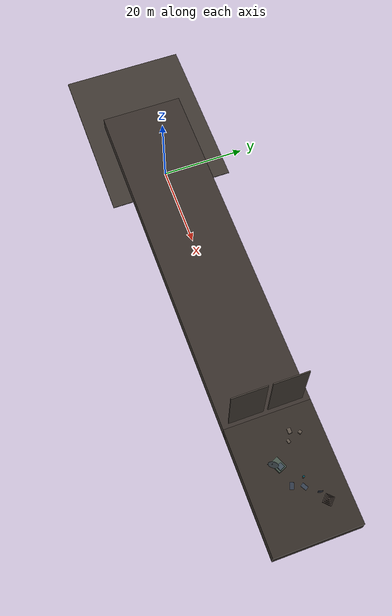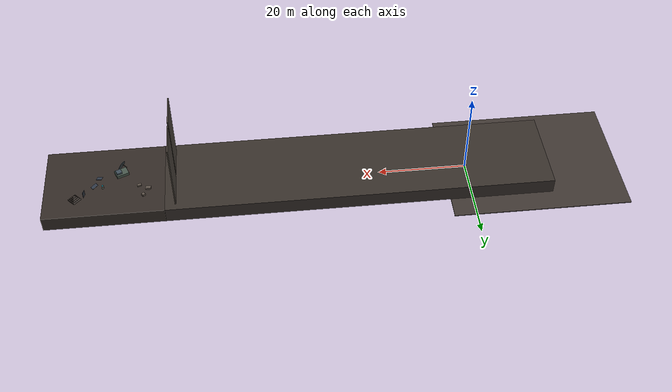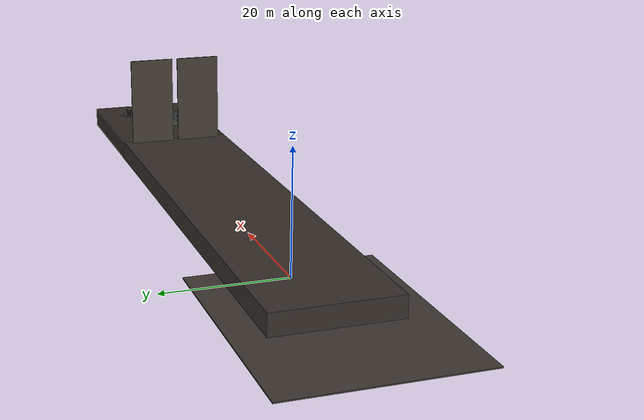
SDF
<sdf version="1.8">
 <world name="lava_tube_fuel">
  <plugin name="gz::sim::systems::Physics" filename="gz-sim-physics-system"/>
  <plugin name="gz::sim::systems::UserCommands" filename="gz-sim-user-commands-system"/>
  <plugin name="gz::sim::systems::SceneBroadcaster" filename="gz-sim-scene-broadcaster-system"/>
  <plugin name="gz::sim::systems::Sensors" filename="gz-sim-sensors-system">
   <render_engine>ogre2</render_engine>
  </plugin>
  <gravity>0 0 -1.62</gravity>
  <magnetic_field>0 0 0</magnetic_field>
  <atmosphere type="adiabatic"/>
  <physics type="ode"><max_step_size>0.002</max_step_size><real_time_factor>1</real_time_factor></physics>
  <scene>
   <ambient>0.12 0.11 0.14 1</ambient>
   <background>0.02 0.02 0.05 1</background>
   <shadows>false</shadows>
  </scene>
  <light name="tunnel_lit_00" type="point">
   <pose>2 0 4.3 0 0 0</pose>
   <diffuse>0.82 0.74 0.62 1</diffuse>
   <specular>0.12 0.11 0.10 1</specular>
   <attenuation><range>22</range><linear>0.06</linear><constant>0.4</constant></attenuation>
  </light>
  <light name="tunnel_lit_01" type="point">
   <pose>14 0 4.3 0 0 0</pose>
   <diffuse>0.78 0.70 0.60 1</diffuse>
   <specular>0.12 0.11 0.10 1</specular>
   <attenuation><range>22</range><linear>0.06</linear><constant>0.4</constant></attenuation>
  </light>
  <light name="tunnel_lit_02" type="point">
   <pose>26 0 4.3 0 0 0</pose>
   <diffuse>0.78 0.70 0.60 1</diffuse>
   <specular>0.12 0.11 0.10 1</specular>
   <attenuation><range>22</range><linear>0.06</linear><constant>0.4</constant></attenuation>
  </light>
  <light name="tunnel_lit_03" type="point">
   <pose>38 0 4.3 0 0 0</pose>
   <diffuse>0.78 0.70 0.60 1</diffuse>
   <specular>0.12 0.11 0.10 1</specular>
   <attenuation><range>22</range><linear>0.06</linear><constant>0.4</constant></attenuation>
  </light>
  <light name="tunnel_lit_04" type="point">
   <pose>50 0 4.3 0 0 0</pose>
   <diffuse>0.78 0.70 0.60 1</diffuse>
   <specular>0.12 0.11 0.10 1</specular>
   <attenuation><range>22</range><linear>0.06</linear><constant>0.4</constant></attenuation>
  </light>
  <light name="tunnel_lit_05" type="point">
   <pose>62 0 4.3 0 0 0</pose>
   <diffuse>0.78 0.70 0.60 1</diffuse>
   <specular>0.12 0.11 0.10 1</specular>
   <attenuation><range>22</range><linear>0.06</linear><constant>0.4</constant></attenuation>
  </light>
  <light name="tunnel_lit_06" type="point">
   <pose>74 0 4.3 0 0 0</pose>
   <diffuse>0.78 0.70 0.60 1</diffuse>
   <specular>0.12 0.11 0.10 1</specular>
   <attenuation><range>22</range><linear>0.06</linear><constant>0.4</constant></attenuation>
  </light>
  <light name="tunnel_lit_07" type="point">
   <pose>86 0 4.3 0 0 0</pose>
   <diffuse>0.78 0.70 0.60 1</diffuse>
   <specular>0.12 0.11 0.10 1</specular>
   <attenuation><range>22</range><linear>0.06</linear><constant>0.4</constant></attenuation>
  </light>
  <light name="tunnel_lit_08" type="point">
   <pose>98 0 4.3 0 0 0</pose>
   <diffuse>0.78 0.70 0.60 1</diffuse>
   <specular>0.12 0.11 0.10 1</specular>
   <attenuation><range>22</range><linear>0.06</linear><constant>0.4</constant></attenuation>
  </light>
  <light name="tunnel_lit_09" type="point">
   <pose>68 0 4.3 0 0 0</pose>
   <diffuse>0.78 0.70 0.60 1</diffuse>
   <specular>0.12 0.11 0.10 1</specular>
   <attenuation><range>22</range><linear>0.06</linear><constant>0.4</constant></attenuation>
  </light>
  <light name="chamber_glow" type="point">
   <pose>81 0 5.5 0 0 0</pose>
   <diffuse>0.45 0.55 0.65 1</diffuse>
   <attenuation><range>28</range><linear>0.05</linear><constant>0.5</constant></attenuation>
  </light>
  <light name="beacon_pulse" type="point">
   <pose>82 2 4.8 0 0 0</pose>
   <diffuse>0.10 0.70 0.80 1</diffuse>
   <attenuation><range>12</range></attenuation>
  </light>
  <model name="lunar_surface">
   <static>true</static>
   <pose>-15 0 -0.1 0 0 0</pose>
   <link name="link">
    <collision name="surface_col"><geometry><box><size>40 30 0.2</size></box></geometry></collision>
    <visual name="surface_vis">
     <geometry><box><size>40 30 0.2</size></box></geometry>
     <material><ambient>0.20 0.18 0.16 1</ambient><diffuse>0.25 0.22 0.20 1</diffuse></material>
    </visual>
   </link>
  </model>
  <model name="walking_plate">
   <static>true</static>
   <pose>25 0 1.75 0 0 0</pose>
   <link name="link">
    <collision name="plate_col"><geometry><box><size>86.667 20 3.5</size></box></geometry></collision>
    <visual name="plate_vis">
     <geometry><box><size>86.667 20 3.5</size></box></geometry>
     <material>
      <ambient>0.18 0.16 0.14 1</ambient>
      <diffuse>0.22 0.19 0.17 1</diffuse>
      <specular>0.05 0.05 0.05 1</specular>
     </material>
    </visual>
   </link>
  </model>
  <model name="enigma_door_left">
   <static>true</static>
   <pose>66 -4.5 11.5 0 0 0</pose>
   <link name="link">
    <collision name="jamb_col"><geometry><box><size>0.25 8.0 16.0</size></box></geometry></collision>
    <visual name="jamb_vis">
     <geometry><box><size>0.25 8.0 16.0</size></box></geometry>
     <material>
      <ambient>0.22 0.20 0.18 1</ambient>
      <diffuse>0.28 0.25 0.22 1</diffuse>
      <specular>0.08 0.08 0.08 1</specular>
     </material>
    </visual>
   </link>
  </model>
  <model name="enigma_door_right">
   <static>true</static>
   <pose>66 4.5 11.5 0 0 0</pose>
   <link name="link">
    <collision name="jamb_col"><geometry><box><size>0.25 8.0 16.0</size></box></geometry></collision>
    <visual name="jamb_vis">
     <geometry><box><size>0.25 8.0 16.0</size></box></geometry>
     <material>
      <ambient>0.22 0.20 0.18 1</ambient>
      <diffuse>0.28 0.25 0.22 1</diffuse>
      <specular>0.08 0.08 0.08 1</specular>
     </material>
    </visual>
   </link>
  </model>
  <model name="enigma_plate">
   <static>true</static>
   <pose>81 0 1.75 0 0 0</pose>
   <link name="link">
    <collision name="plate_col"><geometry><box><size>28 20 3.5</size></box></geometry></collision>
    <visual name="plate_vis">
     <geometry><box><size>28 20 3.5</size></box></geometry>
     <material>
      <ambient>0.16 0.14 0.12 1</ambient>
      <diffuse>0.20 0.17 0.15 1</diffuse>
      <specular>0.05 0.05 0.05 1</specular>
     </material>
    </visual>
   </link>
  </model>
  <model name="rubble_0">
   <static>true</static>
   <pose>72 3 3.5 0 0 0</pose>
   <link name="link">
    <collision name="r_col">
     <pose>0 0 0.2 0 0 0</pose>
     <geometry><box><size>1.2 0.8 0.4</size></box></geometry>
    </collision>
    <visual name="r_vis">
     <pose>0 0 0.2 0 0 0</pose>
     <geometry><box><size>1.2 0.8 0.4</size></box></geometry>
     <material><diffuse>0.36 0.32 0.28 1</diffuse></material>
    </visual>
   </link>
  </model>
  <model name="rubble_1">
   <static>true</static>
   <pose>74 2 3.5 0 0 0.3</pose>
   <link name="link">
    <collision name="r_col">
     <pose>0 0 0.175 0 0 0</pose>
     <geometry><box><size>0.9 0.6 0.35</size></box></geometry>
    </collision>
    <visual name="r_vis">
     <pose>0 0 0.175 0 0 0</pose>
     <geometry><box><size>0.9 0.6 0.35</size></box></geometry>
     <material><diffuse>0.36 0.32 0.28 1</diffuse></material>
    </visual>
   </link>
  </model>
  <model name="rubble_2">
   <static>true</static>
   <pose>73 5 3.5 0 0 0.6</pose>
   <link name="link">
    <collision name="r_col">
     <pose>0 0 0.25 0 0 0</pose>
     <geometry><box><size>0.7 0.7 0.5</size></box></geometry>
    </collision>
    <visual name="r_vis">
     <pose>0 0 0.25 0 0 0</pose>
     <geometry><box><size>0.7 0.7 0.5</size></box></geometry>
     <material><diffuse>0.36 0.32 0.28 1</diffuse></material>
    </visual>
   </link>
  </model>
  <model name="ancient_lander">
   <static>true</static>
   <pose>78 -2 3.5 0 0 0.4</pose>
   <link name="link">
    <collision name="body_col">
     <pose>0 0 0.35 0 0 0</pose>
     <geometry><box><size>2.8 2.0 0.7</size></box></geometry>
    </collision>
    <visual name="body_vis">
     <pose>0 0 0.35 0 0 0</pose>
     <geometry><box><size>2.8 2.0 0.7</size></box></geometry>
     <material><diffuse>0.28 0.34 0.30 1</diffuse></material>
    </visual>
    <collision name="dome_col">
     <pose>0.6 0 0.85 0 0 0</pose>
     <geometry><box><size>1.2 1.2 0.5</size></box></geometry>
    </collision>
    <visual name="dome_vis">
     <pose>0.6 0 0.85 0 0 0</pose>
     <geometry><box><size>1.2 1.2 0.5</size></box></geometry>
     <material><diffuse>0.24 0.30 0.34 1</diffuse></material>
    </visual>
   </link>
  </model>
  <model name="ancient_dish">
   <static>true</static>
   <pose>77 -4 3.5 0 0.5 0.8</pose>
   <link name="link">
    <collision name="mast_col">
     <pose>0 0 1.1 0 0 0</pose>
     <geometry><cylinder><radius>0.06</radius><length>2.2</length></cylinder></geometry>
    </collision>
    <visual name="mast_vis">
     <pose>0 0 1.1 0 0 0</pose>
     <geometry><cylinder><radius>0.06</radius><length>2.2</length></cylinder></geometry>
     <material><diffuse>0.26 0.30 0.28 1</diffuse></material>
    </visual>
    <collision name="dish_col">
     <pose>0.3 0 2.0 1.2 0 0</pose>
     <geometry><cylinder><radius>1.1</radius><length>0.06</length></cylinder></geometry>
    </collision>
    <visual name="dish_vis">
     <pose>0.3 0 2.0 1.2 0 0</pose>
     <geometry><cylinder><radius>1.1</radius><length>0.06</length></cylinder></geometry>
     <material><diffuse>0.30 0.34 0.36 1</diffuse></material>
    </visual>
   </link>
  </model>
  <model name="solar_debris_0">
   <static>true</static>
   <pose>84 1.5 3.5 0 0.3 0.6</pose>
   <link name="link">
    <collision name="panel_col">
     <pose>0 0 0.15 0 0 0</pose>
     <geometry><box><size>1.8 0.9 0.04</size></box></geometry>
    </collision>
    <visual name="panel_vis">
     <pose>0 0 0.15 0 0 0</pose>
     <geometry><box><size>1.8 0.9 0.04</size></box></geometry>
     <material><diffuse>0.20 0.24 0.30 1</diffuse></material>
    </visual>
   </link>
  </model>
  <model name="solar_debris_1">
   <static>true</static>
   <pose>83 -1 3.5 0 0.3 -0.4</pose>
   <link name="link">
    <collision name="panel_col">
     <pose>0 0 0.15 0 0 0</pose>
     <geometry><box><size>1.8 0.9 0.04</size></box></geometry>
    </collision>
    <visual name="panel_vis">
     <pose>0 0 0.15 0 0 0</pose>
     <geometry><box><size>1.8 0.9 0.04</size></box></geometry>
     <material><diffuse>0.20 0.24 0.30 1</diffuse></material>
    </visual>
   </link>
  </model>
  <model name="ancient_beacon">
   <static>true</static>
   <pose>82 2 3.5 0 0 0</pose>
   <link name="link">
    <collision name="pedestal_col">
     <pose>0 0 0.3 0 0 0</pose>
     <geometry><cylinder><radius>0.25</radius><length>0.6</length></cylinder></geometry>
    </collision>
    <visual name="pedestal_vis">
     <pose>0 0 0.3 0 0 0</pose>
     <geometry><cylinder><radius>0.25</radius><length>0.6</length></cylinder></geometry>
     <material><diffuse>0.36 0.38 0.34 1</diffuse></material>
    </visual>
    <collision name="orb_col">
     <pose>0 0 0.75 0 0 0</pose>
     <geometry><sphere><radius>0.18</radius></sphere></geometry>
    </collision>
    <visual name="orb_vis">
     <pose>0 0 0.75 0 0 0</pose>
     <geometry><sphere><radius>0.18</radius></sphere></geometry>
     <material><diffuse>0.0 0.5 0.6 1</diffuse><emissive>0.0 0.8 1.0 1</emissive></material>
    </visual>
   </link>
  </model>
  <model name="ancient_plaque">
   <static>true</static>
   <pose>86 4 3.5 0 0 -0.3</pose>
   <link name="link">
    <collision name="slab_col">
     <pose>0 0 0.7 0 0 0</pose>
     <geometry><box><size>0.08 1.0 1.4</size></box></geometry>
    </collision>
    <visual name="slab_vis">
     <pose>0 0 0.7 0 0 0</pose>
     <geometry><box><size>0.08 1.0 1.4</size></box></geometry>
     <material><diffuse>0.18 0.20 0.24 1</diffuse><emissive>0.02 0.08 0.12 1</emissive></material>
    </visual>
   </link>
  </model>
  <model name="mystery_pyramid">
   <static>true</static>
   <pose>88 5 3.5 0 0 0.785</pose>
   <link name="link">
    <collision name="t0_col">
     <pose>0 0 0.15 0 0 0</pose>
     <geometry><box><size>2.0 2.0 0.3</size></box></geometry>
    </collision>
    <visual name="t0_vis">
     <pose>0 0 0.15 0 0 0</pose>
     <geometry><box><size>2.0 2.0 0.3</size></box></geometry>
     <material><diffuse>0.18 0.15 0.13 1</diffuse></material>
    </visual>
    <collision name="t1_col">
     <pose>0 0 0.45 0 0 0</pose>
     <geometry><box><size>1.5 1.5 0.3</size></box></geometry>
    </collision>
    <visual name="t1_vis">
     <pose>0 0 0.45 0 0 0</pose>
     <geometry><box><size>1.5 1.5 0.3</size></box></geometry>
     <material><diffuse>0.18 0.15 0.13 1</diffuse></material>
    </visual>
    <collision name="t2_col">
     <pose>0 0 0.75 0 0 0</pose>
     <geometry><box><size>1.0 1.0 0.3</size></box></geometry>
    </collision>
    <visual name="t2_vis">
     <pose>0 0 0.75 0 0 0</pose>
     <geometry><box><size>1.0 1.0 0.3</size></box></geometry>
     <material><diffuse>0.18 0.15 0.13 1</diffuse></material>
    </visual>
    <collision name="t3_col">
     <pose>0 0 1.05 0 0 0</pose>
     <geometry><box><size>0.5 0.5 0.3</size></box></geometry>
    </collision>
    <visual name="t3_vis">
     <pose>0 0 1.05 0 0 0</pose>
     <geometry><box><size>0.5 0.5 0.3</size></box></geometry>
     <material><diffuse>0.18 0.15 0.13 1</diffuse></material>
    </visual>
   </link>
  </model>
 </world>
</sdf>
